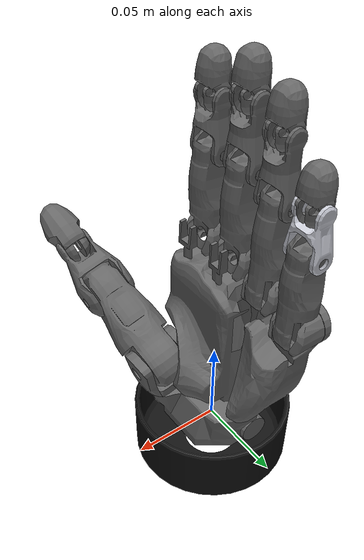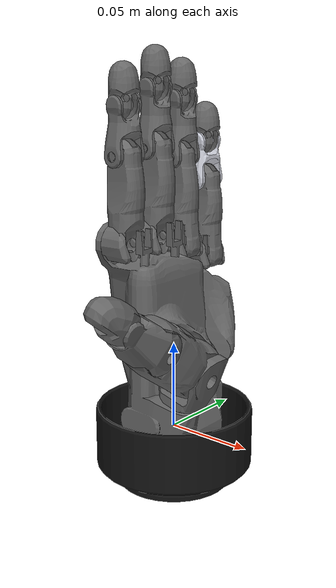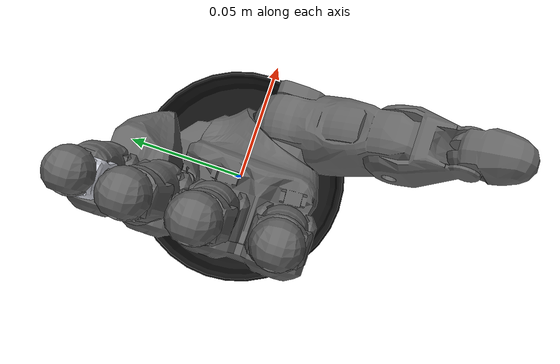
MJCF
<mujoco model="svh">
  <compiler angle="radian" autolimits="true" />
  <option gravity="0 0 0" timestep="0.001" />
  <visual>
    <global offwidth="3840" offheight="2160" />
  </visual>
  <asset>
    <mesh name="base10" content_type="model/obj" file="meshes/visual/base10.obj" />
    <mesh name="h10_left" content_type="model/obj" file="meshes/visual/h10_left.obj" />
    <mesh name="h11_left" content_type="model/obj" file="meshes/visual/h11_left.obj" />
    <mesh name="d10_left" content_type="model/obj" file="meshes/visual/d10_left.obj" />
    <mesh name="d11_left" content_type="model/obj" file="meshes/visual/d11_left.obj" />
    <mesh name="d11_left_collision000" content_type="model/obj" file="meshes/collision/d11_left_collision000.obj" />
    <mesh name="d12_left" content_type="model/obj" file="meshes/visual/d12_left.obj" />
    <mesh name="d12_left_collision000" content_type="model/obj" file="meshes/collision/d12_left_collision000.obj" />
    <mesh name="d12_left_collision001" content_type="model/obj" file="meshes/collision/d12_left_collision001.obj" />
    <mesh name="d12_left_collision002" content_type="model/obj" file="meshes/collision/d12_left_collision002.obj" />
    <mesh name="d12_left_collision003" content_type="model/obj" file="meshes/collision/d12_left_collision003.obj" />
    <mesh name="d13_left" content_type="model/obj" file="meshes/visual/d13_left.obj" />
    <mesh name="d13_left_collision000" content_type="model/obj" file="meshes/collision/d13_left_collision000.obj" />
    <mesh name="f10_f20" content_type="model/obj" file="meshes/visual/f10_f20.obj" />
    <mesh name="f11" content_type="model/obj" file="meshes/visual/f11.obj" />
    <mesh name="f11_collision000" content_type="model/obj" file="meshes/collision/f11_collision000.obj" />
    <mesh name="f12" content_type="model/obj" file="meshes/visual/f12.obj" />
    <mesh name="f12_collision000" content_type="model/obj" file="meshes/collision/f12_collision000.obj" />
    <mesh name="f12_collision001" content_type="model/obj" file="meshes/collision/f12_collision001.obj" />
    <mesh name="f12_collision002" content_type="model/obj" file="meshes/collision/f12_collision002.obj" />
    <mesh name="f12_collision003" content_type="model/obj" file="meshes/collision/f12_collision003.obj" />
    <mesh name="f12_collision004" content_type="model/obj" file="meshes/collision/f12_collision004.obj" />
    <mesh name="f12_collision005" content_type="model/obj" file="meshes/collision/f12_collision005.obj" />
    <mesh name="finger_tip" content_type="model/obj" file="meshes/visual/finger_tip.obj" />
    <mesh name="finger_tip_collision000" content_type="model/obj" file="meshes/collision/finger_tip_collision000.obj" />
    <mesh name="finger_tip_collision001" content_type="model/obj" file="meshes/collision/finger_tip_collision001.obj" />
    <mesh name="f21" content_type="model/obj" file="meshes/visual/f21.obj" />
    <mesh name="f21_collision000" content_type="model/obj" file="meshes/collision/f21_collision000.obj" />
    <mesh name="f22_f32" content_type="model/obj" file="meshes/visual/f22_f32.obj" />
    <mesh name="f22_f32_collision000" content_type="model/obj" file="meshes/collision/f22_f32_collision000.obj" />
    <mesh name="f22_f32_collision001" content_type="model/obj" file="meshes/collision/f22_f32_collision001.obj" />
    <mesh name="f22_f32_collision002" content_type="model/obj" file="meshes/collision/f22_f32_collision002.obj" />
    <mesh name="f22_f32_collision003" content_type="model/obj" file="meshes/collision/f22_f32_collision003.obj" />
    <mesh name="f22_f32_collision004" content_type="model/obj" file="meshes/collision/f22_f32_collision004.obj" />
    <mesh name="f22_f32_collision005" content_type="model/obj" file="meshes/collision/f22_f32_collision005.obj" />
    <mesh name="f30_f40" content_type="model/obj" file="meshes/visual/f30_f40.obj" />
    <mesh name="f31" content_type="model/obj" file="meshes/visual/f31.obj" />
    <mesh name="f31_collision000" content_type="model/obj" file="meshes/collision/f31_collision000.obj" />
    <mesh name="f41" content_type="model/obj" file="meshes/visual/f41.obj" />
    <mesh name="f41_collision000" content_type="model/obj" file="meshes/collision/f41_collision000.obj" />
    <mesh name="f42" content_type="model/obj" file="meshes/visual/f42.obj" />
    <mesh name="f42_collision000" content_type="model/obj" file="meshes/collision/f42_collision000.obj" />
    <mesh name="f42_collision001" content_type="model/obj" file="meshes/collision/f42_collision001.obj" />
    <mesh name="f42_collision002" content_type="model/obj" file="meshes/collision/f42_collision002.obj" />
    <material name="base10_material" rgba="0.07058824 0.07058824 0.07058824 1" />
    <material name="h10_left_material" rgba="0.40000000 0.40000000 0.40000000 1" />
    <material name="h11_left_material" rgba="0.40000000 0.40000000 0.40000000 1" />
    <material name="d10_left_material" rgba="0.40000000 0.40000000 0.40000000 1" />
    <material name="d11_left_material" rgba="0.40000000 0.40000000 0.40000000 1" />
    <material name="d12_left_material" rgba="0.40000000 0.40000000 0.40000000 1" />
    <material name="d13_left_material" rgba="0.40000000 0.40000000 0.40000000 1" />
    <material name="f10_f20_material" rgba="0.40000000 0.40000000 0.40000000 1" />
    <material name="f11_material" rgba="0.40000000 0.40000000 0.40000000 1" />
    <material name="f12_material" rgba="0.40000000 0.40000000 0.40000000 1" />
    <material name="finger_tip_material" rgba="0.40000000 0.40000000 0.40000000 1" />
    <material name="f21_material" rgba="0.40000000 0.40000000 0.40000000 1" />
    <material name="f22_f32_material" rgba="0.40000000 0.40000000 0.40000000 1" />
    <material name="f30_f40_material" rgba="0.40000000 0.40000000 0.40000000 1" />
    <material name="f31_material" rgba="0.40000000 0.40000000 0.40000000 1" />
    <material name="f41_material" rgba="0.40000000 0.40000000 0.40000000 1" />
    <material name="f42_material" rgba="0.80000000 0.80784314 0.84705882 1" />
    <texture type="skybox" builtin="gradient" rgb1="1 1 1" rgb2="1 1 1" width="32" height="512" />
  </asset>
  <worldbody>
    <light pos="0 0 5" dir="0 0 -1" directional="true" />
    <body name="hand_root">
      <body name="left_hand_base_link" quat="0.707109 0 0 -0.707105">
        <inertial pos="0 0 -0.009" quat="0.5 0.5 -0.5 0.5" mass="0.05" diaginertia="6.75e-05 4.21875e-05 4.21875e-05" />
        <geom name="left_hand_base_link_base10_visual" pos="0 0 -0.032" quat="1 0 0 0" type="mesh" contype="0" conaffinity="0" group="1" density="0" mesh="base10" material="base10_material" />
        <geom size="0.045 0.0225" pos="0 0 -0.009" type="cylinder" group="3" />
        <body name="left_hand_e1" pos="0 -0.01313 0">
          <inertial pos="0.004965 0.011315 0.05175" quat="0.707107 0 0 0.707107" mass="0.05" diaginertia="5.95994e-05 5.66184e-05 2.69491e-05" />
          <geom name="left_hand_e1_h10_left_visual" pos="0 0.01313 0" quat="1 0 0 0" type="mesh" contype="0" conaffinity="0" group="1" density="0" mesh="h10_left" material="h10_left_material" />
          <geom size="0.025 0.025 0.013" pos="0 0.01313 0.013" type="box" group="3" />
          <geom size="0.0292 0.019 0.03205" pos="0.00573 0.0035 0.05747" type="box" group="3" />
          <geom size="0.021 0.019 0.0075" pos="0.01 0.0035 0.096" type="box" group="3" />
          <body name="left_hand_z" pos="0.0169 0.02626 0" quat="0.700986 -0.0923056 0.0922868 0.701129">
            <inertial pos="0 0 0.04192" quat="0.707107 0 0 0.707107" mass="0.02604" diaginertia="4.74362e-06 3.90817e-06 3.33529e-06" />
            <joint name="left_hand_Thumb_Opposition" pos="0 0 0" axis="0 0 1" range="0 0.9879" actuatorfrcrange="-1000 1000" damping="0.1" armature="0.0002" frictionloss="0.0" />
            <geom name="left_hand_z_d10_left_visual" pos="0 0 0.02442" quat="1 0 0 0" type="mesh" contype="0" conaffinity="0" group="1" density="0" mesh="d10_left" material="d10_left_material" />
            <geom size="0.012 0.0094 0.004" pos="0 0 0.02842" type="box" group="3" />
            <geom size="0.003 0.012 0.0165" pos="0.0125 0 0.04292" type="box" group="3" />
            <geom size="0.003 0.012 0.0165" pos="-0.0125 0 0.04292" type="box" group="3" />
            <body name="left_hand_a" pos="0 0 0.04596" quat="0.329787 -0.625494 0.329779 -0.625494">
              <inertial pos="0 0 0" quat="0 0.707107 0 0.707107" mass="0.05" diaginertia="2.9528e-05 2.8422e-05 8.22154e-06" />
              <joint name="left_hand_Thumb_Flexion" pos="0 0 0" axis="0 0 1" range="-0.9704 0" actuatorfrcrange="-1000 1000" damping="0.1" armature="0.0002" frictionloss="0.0" />
              <geom name="left_hand_a_d11_left_visual" type="mesh" contype="0" conaffinity="0" group="1" density="0" mesh="d11_left" material="d11_left_material" />
              <geom type="mesh" mesh="d11_left_collision000" group="3" />
              <body name="left_hand_b" pos="0.0485 0 0">
                <inertial pos="0 0 0" quat="0 0.707107 0 0.707107" mass="0.00989645" diaginertia="2.41448e-06 1.96387e-06 5.64163e-07" />
                <joint name="left_hand_j3" pos="0 0 0" axis="0 0 1" range="-0.98506 0" actuatorfrcrange="-1000 1000" damping="0.0" armature="0.0" frictionloss="0.0" />
                <geom name="left_hand_b_d12_left_visual" type="mesh" contype="0" conaffinity="0" group="1" density="0" mesh="d12_left" material="d12_left_material" />
                <geom name="left_hand_b_collision_part000" type="mesh" mesh="d12_left_collision000" group="3" />
                <geom name="left_hand_b_collision_part001" type="mesh" mesh="d12_left_collision001" group="3" />
                <geom name="left_hand_b_collision_part002" type="mesh" mesh="d12_left_collision002" group="3" />
                <geom name="left_hand_b_collision_part003" type="mesh" mesh="d12_left_collision003" group="3" />
                <body name="left_hand_c" pos="0.03 0 0">
                  <inertial pos="0.007 0 0" quat="0.5 0.5 0.5 0.5" mass="0.02" diaginertia="2e-05 2e-05 1e-05" />
                  <joint name="left_hand_j4" pos="0 0 0" axis="0 0 1" range="-1.406 0" actuatorfrcrange="-1000 1000" damping="0.0" armature="0.0" frictionloss="0.0" />
                  <geom name="left_hand_c_d13_left_visual" type="mesh" contype="0" conaffinity="0" group="1" density="0" mesh="d13_left" material="d13_left_material" />
                  <geom type="mesh" mesh="d13_left_collision000" group="3" />
                  <body name="thtip" pos="0.0275 0 0" />
                </body>
              </body>
            </body>
          </body>
          <body name="left_hand_e2" pos="-0.0184 0.006 0.0375">
            <inertial pos="-0.01275 0 0.02515" mass="0.05" diaginertia="2.36412e-05 2.25671e-05 9.13421e-06" />
            <joint name="left_hand_j5" pos="0 0 0" axis="0 0 1" range="-0.98786 0" actuatorfrcrange="-1000 1000" damping="0.0" armature="0.0" frictionloss="0.0" />
            <geom name="left_hand_e2_h11_left_visual" pos="0.0007 0 -0.01002" quat="1 0 0 0" type="mesh" contype="0" conaffinity="0" group="1" density="0" mesh="h11_left" material="h11_left_material" />
            <geom size="0.0123 0.0175 0.0282" pos="-0.016 0 0.02" type="box" group="3" />
            <geom size="0.006 0.009 0.0105" pos="-0.0032 -0.0083 0.048" type="box" group="3" />
            <body name="left_hand_virtual_j" pos="-0.003855 -0.006 0.0655" quat="0.500048 -0.5 -0.5 -0.499952">
              <inertial pos="0 0 -0.00321" mass="0.008" diaginertia="5.33333e-07 5.33333e-07 5.33333e-07" />
              <joint name="left_hand_ring_spread" pos="0 0 0" axis="0 0 1" range="-0.28833 0" actuatorfrcrange="-1000 1000" damping="0.0" armature="0.0" frictionloss="0.0" />
              <geom name="left_hand_virtual_j_f30_f40_visual" pos="0 0 -0.01321" quat="1 0 0 0" type="mesh" contype="0" conaffinity="0" group="1" density="0" mesh="f30_f40" material="f30_f40_material" />
              <geom size="0.01" pos="0 0 -0.00321" group="3" />
              <body name="left_hand_j" quat="0.707141 0.707073 0 0">
                <inertial pos="0 0 0" quat="0 0.707107 0 0.707107" mass="0.017854" diaginertia="4.02767e-06 3.84988e-06 1.12973e-06" />
                <joint name="left_hand_Ring_Finger" pos="0 0 0" axis="0 0 1" range="0 0.98175" actuatorfrcrange="-1000 1000" damping="0.1" armature="0.0002" frictionloss="0.0" />
                <geom name="left_hand_j_f31_visual" type="mesh" contype="0" conaffinity="0" group="1" density="0" mesh="f31" material="f31_material" />
                <geom type="mesh" mesh="f31_collision000" group="3" />
                <body name="left_hand_n" pos="0.05004 0 0">
                  <inertial pos="0 0 0" quat="0 0.707107 0 0.707107" mass="0.00334494" diaginertia="2.3095e-07 1.71767e-07 9.94768e-08" />
                  <joint name="left_hand_j12" pos="0 0 0" axis="0 0 1" range="0 1.334" actuatorfrcrange="-1000 1000" damping="0.0" armature="0.0" frictionloss="0.0" />
                  <geom name="left_hand_n_f22_f32_visual" type="mesh" contype="0" conaffinity="0" group="1" density="0" mesh="f22_f32" material="f22_f32_material" />
                  <geom name="left_hand_n_collision_part000" type="mesh" mesh="f22_f32_collision000" group="3" />
                  <geom name="left_hand_n_collision_part001" type="mesh" mesh="f22_f32_collision001" group="3" />
                  <geom name="left_hand_n_collision_part002" type="mesh" mesh="f22_f32_collision002" group="3" />
                  <geom name="left_hand_n_collision_part003" type="mesh" mesh="f22_f32_collision003" group="3" />
                  <geom name="left_hand_n_collision_part004" type="mesh" mesh="f22_f32_collision004" group="3" />
                  <geom name="left_hand_n_collision_part005" type="mesh" mesh="f22_f32_collision005" group="3" />
                  <body name="left_hand_r" pos="0.032 0 0">
                    <inertial pos="0.007 0 0" quat="0.5 0.5 0.5 0.5" mass="0.02" diaginertia="2e-05 2e-05 1e-05" />
                    <joint name="left_hand_j16" pos="0 0 0" axis="0 0 1" range="0 1.395" actuatorfrcrange="-1000 1000" damping="0.0" armature="0.0" frictionloss="0.0" />
                    <geom name="left_hand_r_finger_tip_visual" type="mesh" contype="0" conaffinity="0" group="1" density="0" mesh="finger_tip" material="finger_tip_material" />
                    <geom name="left_hand_r_collision_part000" type="mesh" mesh="finger_tip_collision000" group="3" />
                    <geom name="left_hand_r_collision_part001" type="mesh" mesh="finger_tip_collision001" group="3" />
                    <body name="rftip" pos="0.014 0 0" />
                  </body>
                </body>
              </body>
            </body>
            <body name="left_hand_virtual_i" pos="-0.025355 -0.006 0.056" quat="0.500048 -0.5 -0.5 -0.499952">
              <inertial pos="0 0 -0.00321" mass="0.008" diaginertia="5.33333e-07 5.33333e-07 5.33333e-07" />
              <joint name="left_hand_Finger_Spread" pos="0 0 0" axis="0 0 1" range="-0.5829 0" actuatorfrcrange="-1000 1000" damping="0.1" armature="0.0002" frictionloss="0.0" />
              <geom name="left_hand_virtual_i_f30_f40_visual" pos="0 0 -0.01321" quat="1 0 0 0" type="mesh" contype="0" conaffinity="0" group="1" density="0" mesh="f30_f40" material="f30_f40_material" />
              <geom size="0.01" pos="0 0 -0.00321" group="3" />
              <body name="left_hand_i" quat="0.707141 0.707073 0 0">
                <inertial pos="0 0 0" quat="0 0.707107 0 0.707107" mass="0.0155479" diaginertia="2.8156e-06 2.67932e-06 9.74187e-07" />
                <joint name="left_hand_Pinky" pos="0 0 0" axis="0 0 1" range="0 0.98175" actuatorfrcrange="-1000 1000" damping="0.1" armature="0.0002" frictionloss="0.0" />
                <geom name="left_hand_i_f41_visual" type="mesh" contype="0" conaffinity="0" group="1" density="0" mesh="f41" material="f41_material" />
                <geom type="mesh" mesh="f41_collision000" group="3" />
                <body name="left_hand_m" pos="0.04454 0 0">
                  <inertial pos="0.007 0 0" quat="0.5 0.5 0.5 0.5" mass="0.02" diaginertia="2e-06 2e-06 8e-07" />
                  <joint name="left_hand_j13" pos="0 0 0" axis="0 0 1" range="0 1.334" actuatorfrcrange="-1000 1000" damping="0.0" armature="0.0" frictionloss="0.0" />
                  <geom name="left_hand_m_f42_visual" type="mesh" contype="0" conaffinity="0" group="1" density="0" mesh="f42" material="f42_material" />
                  <geom name="left_hand_m_collision_part000" type="mesh" mesh="f42_collision000" group="3" />
                  <geom name="left_hand_m_collision_part001" type="mesh" mesh="f42_collision001" group="3" />
                  <geom name="left_hand_m_collision_part002" type="mesh" mesh="f42_collision002" group="3" />
                  <body name="left_hand_q" pos="0.022 0 0">
                    <inertial pos="0.007 0 0" quat="0.5 0.5 0.5 0.5" mass="0.02" diaginertia="2e-05 2e-05 1e-05" />
                    <joint name="left_hand_j17" pos="0 0 0" axis="0 0 1" range="0 1.3971" actuatorfrcrange="-1000 1000" damping="0.0" armature="0.0" frictionloss="0.0" />
                    <geom name="left_hand_q_finger_tip_visual" type="mesh" contype="0" conaffinity="0" group="1" density="0" mesh="finger_tip" material="finger_tip_material" />
                    <geom name="left_hand_q_collision_part000" type="mesh" mesh="finger_tip_collision000" group="3" />
                    <geom name="left_hand_q_collision_part001" type="mesh" mesh="finger_tip_collision001" group="3" />
                    <body name="lftip" pos="0.014 0 0" />
                  </body>
                </body>
              </body>
            </body>
          </body>
          <body name="left_hand_virtual_l" pos="0.025 0 0.11" quat="0.500048 0.499952 -0.5 0.5">
            <inertial pos="0 0 0.00121" mass="0.008" diaginertia="5.33333e-07 5.33333e-07 5.33333e-07" />
            <joint name="left_hand_index_spread" pos="0 0 0" axis="0 0 1" range="-0.28833 0" actuatorfrcrange="-1000 1000" damping="0.0" armature="0.0" frictionloss="0.0" />
            <geom name="left_hand_virtual_l_f10_f20_visual" pos="0 0 0.01321" quat="1 0 0 0" type="mesh" contype="0" conaffinity="0" group="1" density="0" mesh="f10_f20" material="f10_f20_material" />
            <geom size="0.01" pos="0 0 0.00121" group="3" />
            <body name="left_hand_l" quat="0.707141 -0.707073 0 0">
              <inertial pos="0 0 0" quat="0 0.707107 0 0.707107" mass="0.0182123" diaginertia="4.23257e-06 4.06612e-06 1.15133e-06" />
              <joint name="left_hand_Index_Finger_Proximal" pos="0 0 0" axis="0 0 1" range="0 0.79849" actuatorfrcrange="-1000 1000" damping="0.1" armature="0.0002" frictionloss="0.0" />
              <geom name="left_hand_l_f11_visual" type="mesh" contype="0" conaffinity="0" group="1" density="0" mesh="f11" material="f11_material" />
              <geom type="mesh" mesh="f11_collision000" group="3" />
              <body name="left_hand_p" pos="0.04804 0 0">
                <inertial pos="0.01 0 0" quat="0.5 0.5 0.5 0.5" mass="0.024" diaginertia="1.96667e-06 1.96667e-06 1.96667e-06" />
                <joint name="left_hand_Index_Finger_Distal" pos="0 0 0" axis="0 0 1" range="0 1.334" actuatorfrcrange="-1000 1000" damping="0.1" armature="0.0002" frictionloss="0.0" />
                <geom name="left_hand_p_f12_visual" type="mesh" contype="0" conaffinity="0" group="1" density="0" mesh="f12" material="f12_material" />
                <geom name="left_hand_p_collision_part000" type="mesh" mesh="f12_collision000" group="3" />
                <geom name="left_hand_p_collision_part001" type="mesh" mesh="f12_collision001" group="3" />
                <geom name="left_hand_p_collision_part002" type="mesh" mesh="f12_collision002" group="3" />
                <geom name="left_hand_p_collision_part003" type="mesh" mesh="f12_collision003" group="3" />
                <geom name="left_hand_p_collision_part004" type="mesh" mesh="f12_collision004" group="3" />
                <geom name="left_hand_p_collision_part005" type="mesh" mesh="f12_collision005" group="3" />
                <body name="left_hand_t" pos="0.026 0 0">
                  <inertial pos="0.007 0 0" quat="0.5 0.5 0.5 0.5" mass="0.02" diaginertia="2e-05 2e-05 1e-05" />
                  <joint name="left_hand_j14" pos="0 0 0" axis="0 0 1" range="0 1.394" actuatorfrcrange="-1000 1000" damping="0.0" armature="0.0" frictionloss="0.0" />
                  <geom name="left_hand_t_finger_tip_visual" type="mesh" contype="0" conaffinity="0" group="1" density="0" mesh="finger_tip" material="finger_tip_material" />
                  <geom name="left_hand_t_collision_part000" type="mesh" mesh="finger_tip_collision000" group="3" />
                  <geom name="left_hand_t_collision_part001" type="mesh" mesh="finger_tip_collision001" group="3" />
                  <body name="fftip" pos="0.014 0 0" />
                </body>
              </body>
            </body>
          </body>
          <body name="left_hand_virtual_k" pos="0 0 0.11" quat="0.500048 0.499952 -0.5 0.5">
            <inertial pos="0 0 0.00321" mass="0.008" diaginertia="5.33333e-07 5.33333e-07 5.33333e-07" />
            <geom name="left_hand_virtual_k_f10_f20_visual" pos="0 0 0.01321" quat="1 0 0 0" type="mesh" contype="0" conaffinity="0" group="1" density="0" mesh="f10_f20" material="f10_f20_material" />
            <geom size="0.01" pos="0 0 0.00321" group="3" />
            <body name="left_hand_k" quat="0.707141 -0.707073 0 0">
              <inertial pos="0 0 0" quat="0 0.707107 0 0.707107" mass="0.0189479" diaginertia="4.71858e-06 4.54527e-06 1.1965e-06" />
              <joint name="left_hand_Middle_Finger_Proximal" pos="0 0 0" axis="0 0 1" range="0 0.79849" actuatorfrcrange="-1000 1000" damping="0.1" armature="0.0002" frictionloss="0.0" />
              <geom name="left_hand_k_f21_visual" type="mesh" contype="0" conaffinity="0" group="1" density="0" mesh="f21" material="f21_material" />
              <geom type="mesh" mesh="f21_collision000" group="3" />
              <body name="left_hand_o" pos="0.05004 0 0">
                <inertial pos="0 0 0" quat="0 0.707107 0 0.707107" mass="0.00334494" diaginertia="2.3095e-07 1.71767e-07 9.94768e-08" />
                <joint name="left_hand_Middle_Finger_Distal" pos="0 0 0" axis="0 0 1" range="0 1.334" actuatorfrcrange="-1000 1000" damping="0.1" armature="0.0002" frictionloss="0.0" />
                <geom name="left_hand_o_f22_f32_visual" type="mesh" contype="0" conaffinity="0" group="1" density="0" mesh="f22_f32" material="f22_f32_material" />
                <geom name="left_hand_o_collision_part000" type="mesh" mesh="f22_f32_collision000" group="3" />
                <geom name="left_hand_o_collision_part001" type="mesh" mesh="f22_f32_collision001" group="3" />
                <geom name="left_hand_o_collision_part002" type="mesh" mesh="f22_f32_collision002" group="3" />
                <geom name="left_hand_o_collision_part003" type="mesh" mesh="f22_f32_collision003" group="3" />
                <geom name="left_hand_o_collision_part004" type="mesh" mesh="f22_f32_collision004" group="3" />
                <geom name="left_hand_o_collision_part005" type="mesh" mesh="f22_f32_collision005" group="3" />
                <body name="left_hand_s" pos="0.032 0 0">
                  <inertial pos="0.007 0 0" quat="0.5 0.5 0.5 0.5" mass="0.02" diaginertia="2e-05 2e-05 1e-05" />
                  <joint name="left_hand_j15" pos="0 0 0" axis="0 0 1" range="0 1.334" actuatorfrcrange="-1000 1000" damping="0.0" armature="0.0" frictionloss="0.0" />
                  <geom name="left_hand_s_finger_tip_visual" type="mesh" contype="0" conaffinity="0" group="1" density="0" mesh="finger_tip" material="finger_tip_material" />
                  <geom name="left_hand_s_collision_part000" type="mesh" mesh="finger_tip_collision000" group="3" />
                  <geom name="left_hand_s_collision_part001" type="mesh" mesh="finger_tip_collision001" group="3" />
                  <body name="mftip" pos="0.014 0 0" />
                </body>
              </body>
            </body>
          </body>
        </body>
      </body>
    </body>
  </worldbody>
  <contact>
    <exclude name="ex_left_hand_base_link_left_hand_e1" body1="left_hand_base_link" body2="left_hand_e1" />
    <exclude name="ex_left_hand_e1_left_hand_z" body1="left_hand_e1" body2="left_hand_z" />
    <exclude name="ex_left_hand_z_left_hand_a" body1="left_hand_z" body2="left_hand_a" />
    <exclude name="ex_left_hand_a_left_hand_b" body1="left_hand_a" body2="left_hand_b" />
    <exclude name="ex_left_hand_b_left_hand_c" body1="left_hand_b" body2="left_hand_c" />
    <exclude name="ex_left_hand_c_thtip" body1="left_hand_c" body2="thtip" />
    <exclude name="ex_left_hand_e1_left_hand_e2" body1="left_hand_e1" body2="left_hand_e2" />
    <exclude name="ex_left_hand_e2_left_hand_virtual_j" body1="left_hand_e2" body2="left_hand_virtual_j" />
    <exclude name="ex_left_hand_virtual_j_left_hand_j" body1="left_hand_virtual_j" body2="left_hand_j" />
    <exclude name="ex_left_hand_j_left_hand_n" body1="left_hand_j" body2="left_hand_n" />
    <exclude name="ex_left_hand_n_left_hand_r" body1="left_hand_n" body2="left_hand_r" />
    <exclude name="ex_left_hand_r_rftip" body1="left_hand_r" body2="rftip" />
    <exclude name="ex_left_hand_e2_left_hand_virtual_i" body1="left_hand_e2" body2="left_hand_virtual_i" />
    <exclude name="ex_left_hand_virtual_i_left_hand_i" body1="left_hand_virtual_i" body2="left_hand_i" />
    <exclude name="ex_left_hand_i_left_hand_m" body1="left_hand_i" body2="left_hand_m" />
    <exclude name="ex_left_hand_m_left_hand_q" body1="left_hand_m" body2="left_hand_q" />
    <exclude name="ex_left_hand_q_lftip" body1="left_hand_q" body2="lftip" />
    <exclude name="ex_left_hand_e1_left_hand_virtual_l" body1="left_hand_e1" body2="left_hand_virtual_l" />
    <exclude name="ex_left_hand_virtual_l_left_hand_l" body1="left_hand_virtual_l" body2="left_hand_l" />
    <exclude name="ex_left_hand_l_left_hand_p" body1="left_hand_l" body2="left_hand_p" />
    <exclude name="ex_left_hand_p_left_hand_t" body1="left_hand_p" body2="left_hand_t" />
    <exclude name="ex_left_hand_t_fftip" body1="left_hand_t" body2="fftip" />
    <exclude name="ex_left_hand_e1_left_hand_virtual_k" body1="left_hand_e1" body2="left_hand_virtual_k" />
    <exclude name="ex_left_hand_virtual_k_left_hand_k" body1="left_hand_virtual_k" body2="left_hand_k" />
    <exclude name="ex_left_hand_k_left_hand_o" body1="left_hand_k" body2="left_hand_o" />
    <exclude name="ex_left_hand_o_left_hand_s" body1="left_hand_o" body2="left_hand_s" />
    <exclude name="ex_left_hand_s_mftip" body1="left_hand_s" body2="mftip" />
  </contact>
  <equality>
    <joint name="left_hand_j5_mimic" joint1="left_hand_j5" joint2="left_hand_Thumb_Opposition" polycoef="0 1 0 0 0" solref="0.002 1" solimp="0.9 0.99 0.001" />
    <joint name="left_hand_j3_mimic" joint1="left_hand_j3" joint2="left_hand_Thumb_Flexion" polycoef="0 1.01511 0 0 0" solref="0.002 1" solimp="0.9 0.99 0.001" />
    <joint name="left_hand_j4_mimic" joint1="left_hand_j4" joint2="left_hand_Thumb_Flexion" polycoef="0 1.44889 0 0 0" solref="0.002 1" solimp="0.9 0.99 0.001" />
    <joint name="left_hand_j14_mimic" joint1="left_hand_j14" joint2="left_hand_Index_Finger_Distal" polycoef="0 1.0450 0 0 0" solref="0.002 1" solimp="0.9 0.99 0.001" />
    <joint name="left_hand_j15_mimic" joint1="left_hand_j15" joint2="left_hand_Middle_Finger_Distal" polycoef="0 1.0454 0 0 0" solref="0.002 1" solimp="0.9 0.99 0.001" />
    <joint name="left_hand_j12_mimic" joint1="left_hand_j12" joint2="left_hand_Ring_Finger" polycoef="0 1.3588 0 0 0" solref="0.002 1" solimp="0.9 0.99 0.001" />
    <joint name="left_hand_j16_mimic" joint1="left_hand_j16" joint2="left_hand_Ring_Finger" polycoef="0 1.42093 0 0 0" solref="0.002 1" solimp="0.9 0.99 0.001" />
    <joint name="left_hand_j13_mimic" joint1="left_hand_j13" joint2="left_hand_Pinky" polycoef="0 1.35880 0 0 0" solref="0.002 1" solimp="0.9 0.99 0.001" />
    <joint name="left_hand_j17_mimic" joint1="left_hand_j17" joint2="left_hand_Pinky" polycoef="0 1.42307 0 0 0" solref="0.002 1" solimp="0.9 0.99 0.001" />
    <joint name="left_hand_index_spread_mimic" joint1="left_hand_index_spread" joint2="left_hand_Finger_Spread" polycoef="0 0.5 0 0 0" solref="0.002 1" solimp="0.9 0.99 0.001" />
    <joint name="left_hand_ring_spread_mimic" joint1="left_hand_ring_spread" joint2="left_hand_Finger_Spread" polycoef="0 0.5 0 0 0" solref="0.002 1" solimp="0.9 0.99 0.001" />
  </equality>
  <actuator>
    <position name="left_hand_Thumb_Flexion_actuator" joint="left_hand_Thumb_Flexion" kp="1" forcerange="-1 1" ctrlrange="-0.9704 0.0" />
    <position name="left_hand_Thumb_Opposition_actuator" joint="left_hand_Thumb_Opposition" kp="1" forcerange="-1 1" ctrlrange="0.0 0.9879" />
    <position name="left_hand_Index_Finger_Distal_actuator" joint="left_hand_Index_Finger_Distal" kp="1" forcerange="-1 1" ctrlrange="0 1.334" />
    <position name="left_hand_Index_Finger_Proximal_actuator" joint="left_hand_Index_Finger_Proximal" kp="1" forcerange="-1 1" ctrlrange="0.0 0.79849" />
    <position name="left_hand_Middle_Finger_Proximal_actuator" joint="left_hand_Middle_Finger_Proximal" kp="1" forcerange="-1 1" ctrlrange="0.0 0.79849" />
    <position name="left_hand_Middle_Finger_Distal_actuator" joint="left_hand_Middle_Finger_Distal" kp="1" forcerange="-1 1" ctrlrange="0 1.334" />
    <position name="left_hand_Ring_Finger_actuator" joint="left_hand_Ring_Finger" kp="1" forcerange="-1 1" ctrlrange="0.0 0.98175" />
    <position name="left_hand_Pinky_actuator" joint="left_hand_Pinky" kp="1" forcerange="-1 1" ctrlrange="0.0 0.98175" />
    <position name="left_hand_Finger_Spread_actuator" joint="left_hand_Finger_Spread" kp="1" forcerange="-1 1" ctrlrange="-0.5829 0.0" />
  </actuator>
</mujoco>
